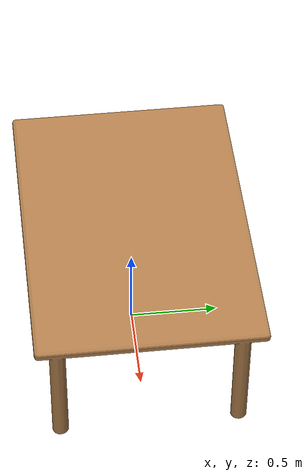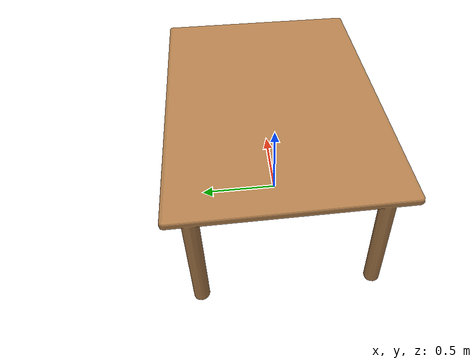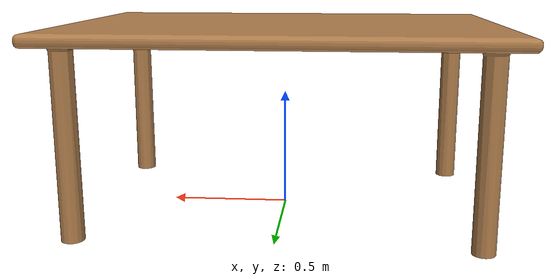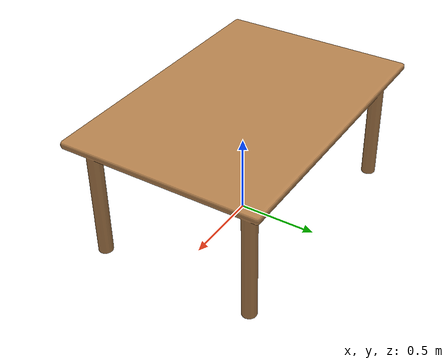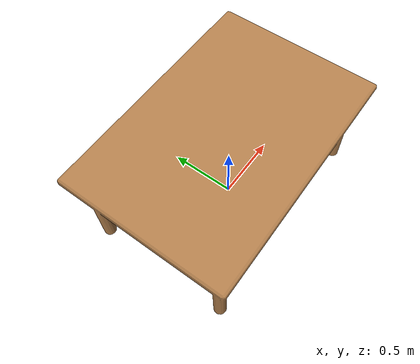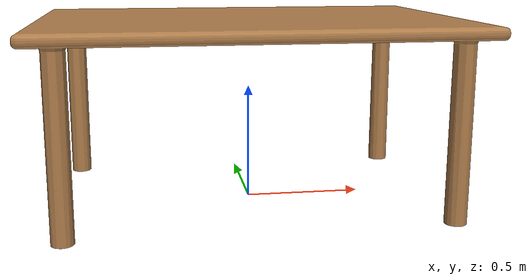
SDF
<?xml version="1.0" ?>
<sdf version="1.5">
  <model name="acquario_table">
    <static>true</static>
    <link name='defaultModel_0::custom_0'>
      <pose>0 0 0 0 0 0</pose>
      <gravity>1</gravity>
      <self_collide>0</self_collide>
      <kinematic>0</kinematic>
      <visual name='custom_0_visual'>
        <pose>0 0 0 0 0 0</pose>
        <geometry>
          <mesh>
            <uri>model://acquario_table/acquario_table.dae</uri>
            <scale>0.01 0.01 0.01</scale>
          </mesh>
        </geometry>
        <material>
          <script>
            <uri>file://media/materials/scripts/gazebo.material</uri>
            <name>Gazebo/Wood</name>
          </script>
        </material>
      </visual>
      <collision name='defaultModel_0::custom_0_collision'>
        <geometry>
          <mesh>
            <uri>model://acquario_table/acquario_table.dae</uri>
            <scale>0.01 0.01 0.01</scale>
          </mesh>
        </geometry>
        <pose>0 0 0 0 0 0</pose>
      </collision>
    </link>
  </model>
</sdf>
